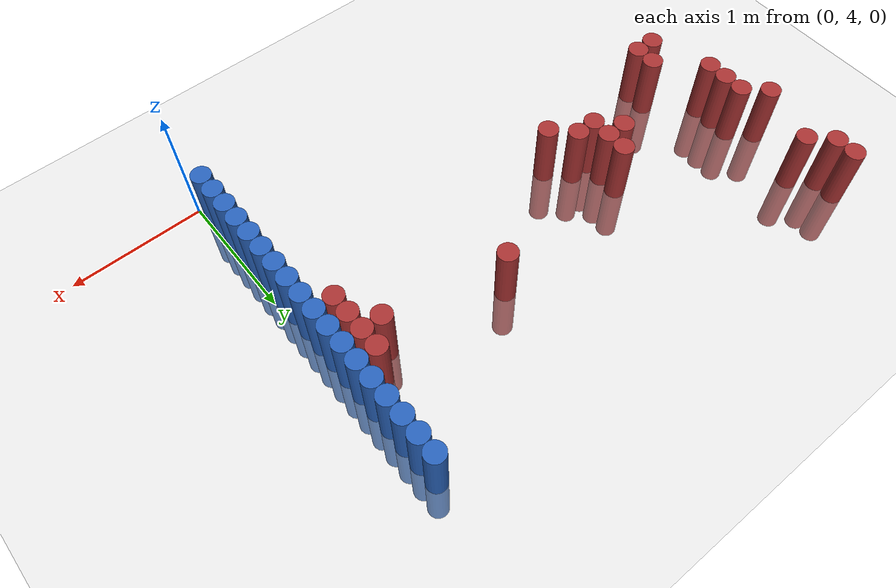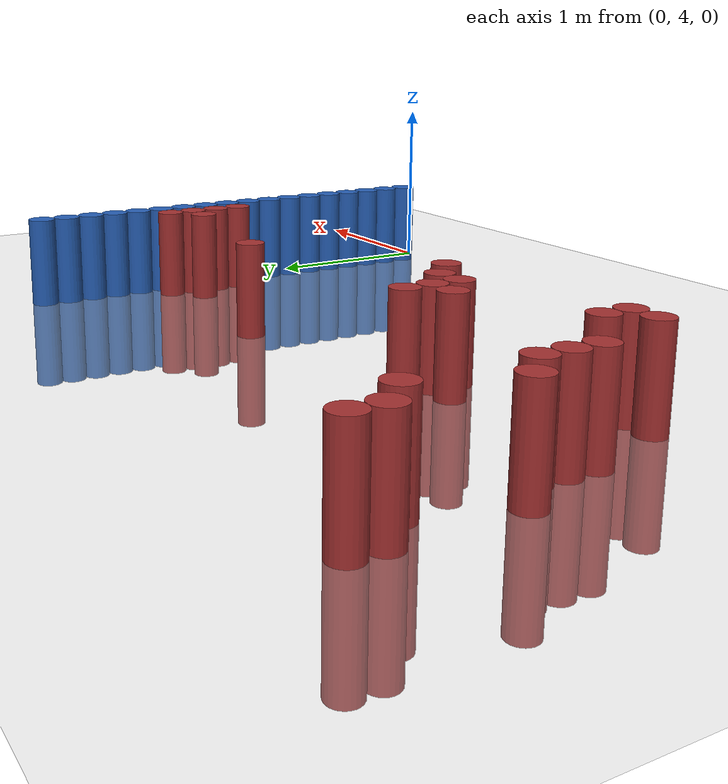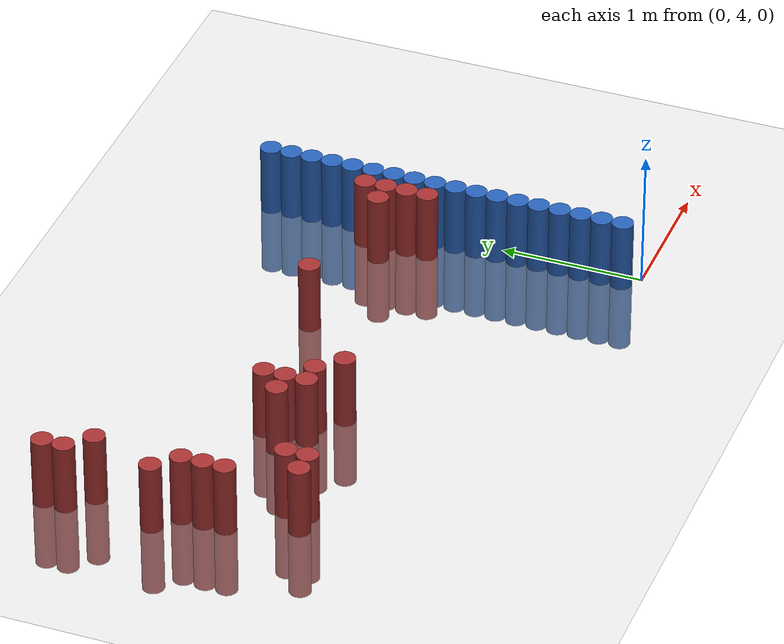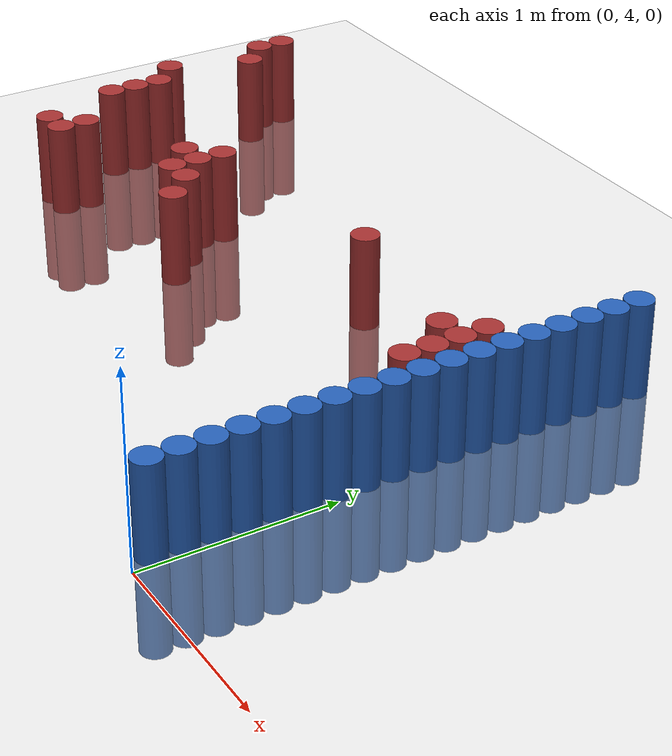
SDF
<sdf version="1.6">
 <world name="default">
  <model name="ground_plane">
   <static>1</static>
   <link name="link">
    <collision name="collision">
     <geometry><plane><normal>0 0 1</normal><size>100 100</size></plane></geometry>
     <surface><friction><ode><mu>100</mu><mu2>50</mu2></ode></friction></surface>
    </collision>
    <visual name="visual">
     <cast_shadows>0</cast_shadows>
     <geometry><plane><normal>0 0 1</normal><size>100 100</size></plane></geometry>
     <material>
      <script><uri>file://media/materials/scripts/gazebo.material</uri><name>Gazebo/Grey</name></script>
     </material>
    </visual>
   </link>
  </model>
  <model name="unit_cylinder_82">
   <static>1</static>
   <pose>-0.075000 4.125000 0.000000 0.000000 0.000000 0.000000</pose>
   <link name="link">
    <inertial>
     <mass>1</mass>
     <inertia><ixx>0.145833</ixx><ixy>0</ixy><ixz>0</ixz><iyy>0.145833</iyy><iyz>0</iyz><izz>0.125</izz></inertia>
    </inertial>
    <collision name="collision">
     <geometry><cylinder><radius>0.075000</radius><length>1</length></cylinder></geometry>
    </collision>
    <visual name="visual">
     <geometry><cylinder><radius>0.075000</radius><length>1</length></cylinder></geometry>
     <material>
      <ambient>0.152000 0.379000 0.720000 1</ambient>
      <diffuse>0.152000 0.379000 0.720000 1</diffuse>
     </material>
     <material>
      <script><name>Gazebo/Grey</name><uri>file://media/materials/scripts/gazebo.material</uri></script>
     </material>
    </visual>
    <sensor name="sensor_contact" type="contact"><contact><collision>collision</collision></contact></sensor>
   </link>
   <plugin filename="gz-sim-touchplugin-system" name="gz::sim::systems::TouchPlugin">
    <target>robot</target>
    <namespace>robot</namespace>
    <time>0.001</time>
    <enabled>true</enabled>
   </plugin>
  </model>
  <model name="unit_cylinder_84">
   <static>1</static>
   <pose>-0.075000 4.275000 0.000000 0.000000 0.000000 0.000000</pose>
   <link name="link">
    <inertial>
     <mass>1</mass>
     <inertia><ixx>0.145833</ixx><ixy>0</ixy><ixz>0</ixz><iyy>0.145833</iyy><iyz>0</iyz><izz>0.125</izz></inertia>
    </inertial>
    <collision name="collision">
     <geometry><cylinder><radius>0.075000</radius><length>1</length></cylinder></geometry>
    </collision>
    <visual name="visual">
     <geometry><cylinder><radius>0.075000</radius><length>1</length></cylinder></geometry>
     <material>
      <ambient>0.152000 0.379000 0.720000 1</ambient>
      <diffuse>0.152000 0.379000 0.720000 1</diffuse>
     </material>
     <material>
      <script><name>Gazebo/Grey</name><uri>file://media/materials/scripts/gazebo.material</uri></script>
     </material>
    </visual>
    <sensor name="sensor_contact" type="contact"><contact><collision>collision</collision></contact></sensor>
   </link>
   <plugin filename="gz-sim-touchplugin-system" name="gz::sim::systems::TouchPlugin">
    <target>robot</target>
    <namespace>robot</namespace>
    <time>0.001</time>
    <enabled>true</enabled>
   </plugin>
  </model>
  <model name="unit_cylinder_86">
   <static>1</static>
   <pose>-0.075000 4.425000 0.000000 0.000000 0.000000 0.000000</pose>
   <link name="link">
    <inertial>
     <mass>1</mass>
     <inertia><ixx>0.145833</ixx><ixy>0</ixy><ixz>0</ixz><iyy>0.145833</iyy><iyz>0</iyz><izz>0.125</izz></inertia>
    </inertial>
    <collision name="collision">
     <geometry><cylinder><radius>0.075000</radius><length>1</length></cylinder></geometry>
    </collision>
    <visual name="visual">
     <geometry><cylinder><radius>0.075000</radius><length>1</length></cylinder></geometry>
     <material>
      <ambient>0.152000 0.379000 0.720000 1</ambient>
      <diffuse>0.152000 0.379000 0.720000 1</diffuse>
     </material>
     <material>
      <script><name>Gazebo/Grey</name><uri>file://media/materials/scripts/gazebo.material</uri></script>
     </material>
    </visual>
    <sensor name="sensor_contact" type="contact"><contact><collision>collision</collision></contact></sensor>
   </link>
   <plugin filename="gz-sim-touchplugin-system" name="gz::sim::systems::TouchPlugin">
    <target>robot</target>
    <namespace>robot</namespace>
    <time>0.001</time>
    <enabled>true</enabled>
   </plugin>
  </model>
  <model name="unit_cylinder_88">
   <static>1</static>
   <pose>-0.075000 4.575000 0.000000 0.000000 0.000000 0.000000</pose>
   <link name="link">
    <inertial>
     <mass>1</mass>
     <inertia><ixx>0.145833</ixx><ixy>0</ixy><ixz>0</ixz><iyy>0.145833</iyy><iyz>0</iyz><izz>0.125</izz></inertia>
    </inertial>
    <collision name="collision">
     <geometry><cylinder><radius>0.075000</radius><length>1</length></cylinder></geometry>
    </collision>
    <visual name="visual">
     <geometry><cylinder><radius>0.075000</radius><length>1</length></cylinder></geometry>
     <material>
      <ambient>0.152000 0.379000 0.720000 1</ambient>
      <diffuse>0.152000 0.379000 0.720000 1</diffuse>
     </material>
     <material>
      <script><name>Gazebo/Grey</name><uri>file://media/materials/scripts/gazebo.material</uri></script>
     </material>
    </visual>
    <sensor name="sensor_contact" type="contact"><contact><collision>collision</collision></contact></sensor>
   </link>
   <plugin filename="gz-sim-touchplugin-system" name="gz::sim::systems::TouchPlugin">
    <target>robot</target>
    <namespace>robot</namespace>
    <time>0.001</time>
    <enabled>true</enabled>
   </plugin>
  </model>
  <model name="unit_cylinder_90">
   <static>1</static>
   <pose>-0.075000 4.725000 0.000000 0.000000 0.000000 0.000000</pose>
   <link name="link">
    <inertial>
     <mass>1</mass>
     <inertia><ixx>0.145833</ixx><ixy>0</ixy><ixz>0</ixz><iyy>0.145833</iyy><iyz>0</iyz><izz>0.125</izz></inertia>
    </inertial>
    <collision name="collision">
     <geometry><cylinder><radius>0.075000</radius><length>1</length></cylinder></geometry>
    </collision>
    <visual name="visual">
     <geometry><cylinder><radius>0.075000</radius><length>1</length></cylinder></geometry>
     <material>
      <ambient>0.152000 0.379000 0.720000 1</ambient>
      <diffuse>0.152000 0.379000 0.720000 1</diffuse>
     </material>
     <material>
      <script><name>Gazebo/Grey</name><uri>file://media/materials/scripts/gazebo.material</uri></script>
     </material>
    </visual>
    <sensor name="sensor_contact" type="contact"><contact><collision>collision</collision></contact></sensor>
   </link>
   <plugin filename="gz-sim-touchplugin-system" name="gz::sim::systems::TouchPlugin">
    <target>robot</target>
    <namespace>robot</namespace>
    <time>0.001</time>
    <enabled>true</enabled>
   </plugin>
  </model>
  <model name="unit_cylinder_92">
   <static>1</static>
   <pose>-0.075000 4.875000 0.000000 0.000000 0.000000 0.000000</pose>
   <link name="link">
    <inertial>
     <mass>1</mass>
     <inertia><ixx>0.145833</ixx><ixy>0</ixy><ixz>0</ixz><iyy>0.145833</iyy><iyz>0</iyz><izz>0.125</izz></inertia>
    </inertial>
    <collision name="collision">
     <geometry><cylinder><radius>0.075000</radius><length>1</length></cylinder></geometry>
    </collision>
    <visual name="visual">
     <geometry><cylinder><radius>0.075000</radius><length>1</length></cylinder></geometry>
     <material>
      <ambient>0.152000 0.379000 0.720000 1</ambient>
      <diffuse>0.152000 0.379000 0.720000 1</diffuse>
     </material>
     <material>
      <script><name>Gazebo/Grey</name><uri>file://media/materials/scripts/gazebo.material</uri></script>
     </material>
    </visual>
    <sensor name="sensor_contact" type="contact"><contact><collision>collision</collision></contact></sensor>
   </link>
   <plugin filename="gz-sim-touchplugin-system" name="gz::sim::systems::TouchPlugin">
    <target>robot</target>
    <namespace>robot</namespace>
    <time>0.001</time>
    <enabled>true</enabled>
   </plugin>
  </model>
  <model name="unit_cylinder_94">
   <static>1</static>
   <pose>-0.075000 5.025000 0.000000 0.000000 0.000000 0.000000</pose>
   <link name="link">
    <inertial>
     <mass>1</mass>
     <inertia><ixx>0.145833</ixx><ixy>0</ixy><ixz>0</ixz><iyy>0.145833</iyy><iyz>0</iyz><izz>0.125</izz></inertia>
    </inertial>
    <collision name="collision">
     <geometry><cylinder><radius>0.075000</radius><length>1</length></cylinder></geometry>
    </collision>
    <visual name="visual">
     <geometry><cylinder><radius>0.075000</radius><length>1</length></cylinder></geometry>
     <material>
      <ambient>0.152000 0.379000 0.720000 1</ambient>
      <diffuse>0.152000 0.379000 0.720000 1</diffuse>
     </material>
     <material>
      <script><name>Gazebo/Grey</name><uri>file://media/materials/scripts/gazebo.material</uri></script>
     </material>
    </visual>
    <sensor name="sensor_contact" type="contact"><contact><collision>collision</collision></contact></sensor>
   </link>
   <plugin filename="gz-sim-touchplugin-system" name="gz::sim::systems::TouchPlugin">
    <target>robot</target>
    <namespace>robot</namespace>
    <time>0.001</time>
    <enabled>true</enabled>
   </plugin>
  </model>
  <model name="unit_cylinder_178">
   <static>1</static>
   <pose>-3.675000 6.075000 0.000000 0.000000 0.000000 0.000000</pose>
   <link name="link">
    <inertial>
     <mass>1</mass>
     <inertia><ixx>0.145833</ixx><ixy>0</ixy><ixz>0</ixz><iyy>0.145833</iyy><iyz>0</iyz><izz>0.125</izz></inertia>
    </inertial>
    <collision name="collision">
     <geometry><cylinder><radius>0.075000</radius><length>1</length></cylinder></geometry>
    </collision>
    <visual name="visual">
     <geometry><cylinder><radius>0.075000</radius><length>1</length></cylinder></geometry>
     <material>
      <ambient>0.648000 0.192000 0.192000 1</ambient>
      <diffuse>0.648000 0.192000 0.192000 1</diffuse>
     </material>
     <material>
      <script><name>Gazebo/Grey</name><uri>file://media/materials/scripts/gazebo.material</uri></script>
     </material>
    </visual>
    <sensor name="sensor_contact" type="contact"><contact><collision>collision</collision></contact></sensor>
   </link>
   <plugin filename="gz-sim-touchplugin-system" name="gz::sim::systems::TouchPlugin">
    <target>robot</target>
    <namespace>robot</namespace>
    <time>0.001</time>
    <enabled>true</enabled>
   </plugin>
  </model>
  <model name="unit_cylinder_179">
   <static>1</static>
   <pose>-3.675000 6.675000 0.000000 0.000000 0.000000 0.000000</pose>
   <link name="link">
    <inertial>
     <mass>1</mass>
     <inertia><ixx>0.145833</ixx><ixy>0</ixy><ixz>0</ixz><iyy>0.145833</iyy><iyz>0</iyz><izz>0.125</izz></inertia>
    </inertial>
    <collision name="collision">
     <geometry><cylinder><radius>0.075000</radius><length>1</length></cylinder></geometry>
    </collision>
    <visual name="visual">
     <geometry><cylinder><radius>0.075000</radius><length>1</length></cylinder></geometry>
     <material>
      <ambient>0.648000 0.192000 0.192000 1</ambient>
      <diffuse>0.648000 0.192000 0.192000 1</diffuse>
     </material>
     <material>
      <script><name>Gazebo/Grey</name><uri>file://media/materials/scripts/gazebo.material</uri></script>
     </material>
    </visual>
    <sensor name="sensor_contact" type="contact"><contact><collision>collision</collision></contact></sensor>
   </link>
   <plugin filename="gz-sim-touchplugin-system" name="gz::sim::systems::TouchPlugin">
    <target>robot</target>
    <namespace>robot</namespace>
    <time>0.001</time>
    <enabled>true</enabled>
   </plugin>
  </model>
  <model name="unit_cylinder_180">
   <static>1</static>
   <pose>-3.675000 6.825000 0.000000 0.000000 0.000000 0.000000</pose>
   <link name="link">
    <inertial>
     <mass>1</mass>
     <inertia><ixx>0.145833</ixx><ixy>0</ixy><ixz>0</ixz><iyy>0.145833</iyy><iyz>0</iyz><izz>0.125</izz></inertia>
    </inertial>
    <collision name="collision">
     <geometry><cylinder><radius>0.075000</radius><length>1</length></cylinder></geometry>
    </collision>
    <visual name="visual">
     <geometry><cylinder><radius>0.075000</radius><length>1</length></cylinder></geometry>
     <material>
      <ambient>0.648000 0.192000 0.192000 1</ambient>
      <diffuse>0.648000 0.192000 0.192000 1</diffuse>
     </material>
     <material>
      <script><name>Gazebo/Grey</name><uri>file://media/materials/scripts/gazebo.material</uri></script>
     </material>
    </visual>
    <sensor name="sensor_contact" type="contact"><contact><collision>collision</collision></contact></sensor>
   </link>
   <plugin filename="gz-sim-touchplugin-system" name="gz::sim::systems::TouchPlugin">
    <target>robot</target>
    <namespace>robot</namespace>
    <time>0.001</time>
    <enabled>true</enabled>
   </plugin>
  </model>
  <model name="unit_cylinder_189">
   <static>1</static>
   <pose>-3.525000 5.625000 0.000000 0.000000 0.000000 0.000000</pose>
   <link name="link">
    <inertial>
     <mass>1</mass>
     <inertia><ixx>0.145833</ixx><ixy>0</ixy><ixz>0</ixz><iyy>0.145833</iyy><iyz>0</iyz><izz>0.125</izz></inertia>
    </inertial>
    <collision name="collision">
     <geometry><cylinder><radius>0.075000</radius><length>1</length></cylinder></geometry>
    </collision>
    <visual name="visual">
     <geometry><cylinder><radius>0.075000</radius><length>1</length></cylinder></geometry>
     <material>
      <ambient>0.648000 0.192000 0.192000 1</ambient>
      <diffuse>0.648000 0.192000 0.192000 1</diffuse>
     </material>
     <material>
      <script><name>Gazebo/Grey</name><uri>file://media/materials/scripts/gazebo.material</uri></script>
     </material>
    </visual>
    <sensor name="sensor_contact" type="contact"><contact><collision>collision</collision></contact></sensor>
   </link>
   <plugin filename="gz-sim-touchplugin-system" name="gz::sim::systems::TouchPlugin">
    <target>robot</target>
    <namespace>robot</namespace>
    <time>0.001</time>
    <enabled>true</enabled>
   </plugin>
  </model>
  <model name="unit_cylinder_190">
   <static>1</static>
   <pose>-3.525000 5.775000 0.000000 0.000000 0.000000 0.000000</pose>
   <link name="link">
    <inertial>
     <mass>1</mass>
     <inertia><ixx>0.145833</ixx><ixy>0</ixy><ixz>0</ixz><iyy>0.145833</iyy><iyz>0</iyz><izz>0.125</izz></inertia>
    </inertial>
    <collision name="collision">
     <geometry><cylinder><radius>0.075000</radius><length>1</length></cylinder></geometry>
    </collision>
    <visual name="visual">
     <geometry><cylinder><radius>0.075000</radius><length>1</length></cylinder></geometry>
     <material>
      <ambient>0.648000 0.192000 0.192000 1</ambient>
      <diffuse>0.648000 0.192000 0.192000 1</diffuse>
     </material>
     <material>
      <script><name>Gazebo/Grey</name><uri>file://media/materials/scripts/gazebo.material</uri></script>
     </material>
    </visual>
    <sensor name="sensor_contact" type="contact"><contact><collision>collision</collision></contact></sensor>
   </link>
   <plugin filename="gz-sim-touchplugin-system" name="gz::sim::systems::TouchPlugin">
    <target>robot</target>
    <namespace>robot</namespace>
    <time>0.001</time>
    <enabled>true</enabled>
   </plugin>
  </model>
  <model name="unit_cylinder_191">
   <static>1</static>
   <pose>-3.525000 5.925000 0.000000 0.000000 0.000000 0.000000</pose>
   <link name="link">
    <inertial>
     <mass>1</mass>
     <inertia><ixx>0.145833</ixx><ixy>0</ixy><ixz>0</ixz><iyy>0.145833</iyy><iyz>0</iyz><izz>0.125</izz></inertia>
    </inertial>
    <collision name="collision">
     <geometry><cylinder><radius>0.075000</radius><length>1</length></cylinder></geometry>
    </collision>
    <visual name="visual">
     <geometry><cylinder><radius>0.075000</radius><length>1</length></cylinder></geometry>
     <material>
      <ambient>0.648000 0.192000 0.192000 1</ambient>
      <diffuse>0.648000 0.192000 0.192000 1</diffuse>
     </material>
     <material>
      <script><name>Gazebo/Grey</name><uri>file://media/materials/scripts/gazebo.material</uri></script>
     </material>
    </visual>
    <sensor name="sensor_contact" type="contact"><contact><collision>collision</collision></contact></sensor>
   </link>
   <plugin filename="gz-sim-touchplugin-system" name="gz::sim::systems::TouchPlugin">
    <target>robot</target>
    <namespace>robot</namespace>
    <time>0.001</time>
    <enabled>true</enabled>
   </plugin>
  </model>
  <model name="unit_cylinder_192">
   <static>1</static>
   <pose>-3.525000 6.525000 0.000000 0.000000 0.000000 0.000000</pose>
   <link name="link">
    <inertial>
     <mass>1</mass>
     <inertia><ixx>0.145833</ixx><ixy>0</ixy><ixz>0</ixz><iyy>0.145833</iyy><iyz>0</iyz><izz>0.125</izz></inertia>
    </inertial>
    <collision name="collision">
     <geometry><cylinder><radius>0.075000</radius><length>1</length></cylinder></geometry>
    </collision>
    <visual name="visual">
     <geometry><cylinder><radius>0.075000</radius><length>1</length></cylinder></geometry>
     <material>
      <ambient>0.648000 0.192000 0.192000 1</ambient>
      <diffuse>0.648000 0.192000 0.192000 1</diffuse>
     </material>
     <material>
      <script><name>Gazebo/Grey</name><uri>file://media/materials/scripts/gazebo.material</uri></script>
     </material>
    </visual>
    <sensor name="sensor_contact" type="contact"><contact><collision>collision</collision></contact></sensor>
   </link>
   <plugin filename="gz-sim-touchplugin-system" name="gz::sim::systems::TouchPlugin">
    <target>robot</target>
    <namespace>robot</namespace>
    <time>0.001</time>
    <enabled>true</enabled>
   </plugin>
  </model>
  <model name="unit_cylinder_202">
   <static>1</static>
   <pose>-3.375000 5.175000 0.000000 0.000000 0.000000 0.000000</pose>
   <link name="link">
    <inertial>
     <mass>1</mass>
     <inertia><ixx>0.145833</ixx><ixy>0</ixy><ixz>0</ixz><iyy>0.145833</iyy><iyz>0</iyz><izz>0.125</izz></inertia>
    </inertial>
    <collision name="collision">
     <geometry><cylinder><radius>0.075000</radius><length>1</length></cylinder></geometry>
    </collision>
    <visual name="visual">
     <geometry><cylinder><radius>0.075000</radius><length>1</length></cylinder></geometry>
     <material>
      <ambient>0.648000 0.192000 0.192000 1</ambient>
      <diffuse>0.648000 0.192000 0.192000 1</diffuse>
     </material>
     <material>
      <script><name>Gazebo/Grey</name><uri>file://media/materials/scripts/gazebo.material</uri></script>
     </material>
    </visual>
    <sensor name="sensor_contact" type="contact"><contact><collision>collision</collision></contact></sensor>
   </link>
   <plugin filename="gz-sim-touchplugin-system" name="gz::sim::systems::TouchPlugin">
    <target>robot</target>
    <namespace>robot</namespace>
    <time>0.001</time>
    <enabled>true</enabled>
   </plugin>
  </model>
  <model name="unit_cylinder_212">
   <static>1</static>
   <pose>-3.225000 5.175000 0.000000 0.000000 0.000000 0.000000</pose>
   <link name="link">
    <inertial>
     <mass>1</mass>
     <inertia><ixx>0.145833</ixx><ixy>0</ixy><ixz>0</ixz><iyy>0.145833</iyy><iyz>0</iyz><izz>0.125</izz></inertia>
    </inertial>
    <collision name="collision">
     <geometry><cylinder><radius>0.075000</radius><length>1</length></cylinder></geometry>
    </collision>
    <visual name="visual">
     <geometry><cylinder><radius>0.075000</radius><length>1</length></cylinder></geometry>
     <material>
      <ambient>0.648000 0.192000 0.192000 1</ambient>
      <diffuse>0.648000 0.192000 0.192000 1</diffuse>
     </material>
     <material>
      <script><name>Gazebo/Grey</name><uri>file://media/materials/scripts/gazebo.material</uri></script>
     </material>
    </visual>
    <sensor name="sensor_contact" type="contact"><contact><collision>collision</collision></contact></sensor>
   </link>
   <plugin filename="gz-sim-touchplugin-system" name="gz::sim::systems::TouchPlugin">
    <target>robot</target>
    <namespace>robot</namespace>
    <time>0.001</time>
    <enabled>true</enabled>
   </plugin>
  </model>
  <model name="unit_cylinder_213">
   <static>1</static>
   <pose>-3.225000 5.325000 0.000000 0.000000 0.000000 0.000000</pose>
   <link name="link">
    <inertial>
     <mass>1</mass>
     <inertia><ixx>0.145833</ixx><ixy>0</ixy><ixz>0</ixz><iyy>0.145833</iyy><iyz>0</iyz><izz>0.125</izz></inertia>
    </inertial>
    <collision name="collision">
     <geometry><cylinder><radius>0.075000</radius><length>1</length></cylinder></geometry>
    </collision>
    <visual name="visual">
     <geometry><cylinder><radius>0.075000</radius><length>1</length></cylinder></geometry>
     <material>
      <ambient>0.648000 0.192000 0.192000 1</ambient>
      <diffuse>0.648000 0.192000 0.192000 1</diffuse>
     </material>
     <material>
      <script><name>Gazebo/Grey</name><uri>file://media/materials/scripts/gazebo.material</uri></script>
     </material>
    </visual>
    <sensor name="sensor_contact" type="contact"><contact><collision>collision</collision></contact></sensor>
   </link>
   <plugin filename="gz-sim-touchplugin-system" name="gz::sim::systems::TouchPlugin">
    <target>robot</target>
    <namespace>robot</namespace>
    <time>0.001</time>
    <enabled>true</enabled>
   </plugin>
  </model>
  <model name="unit_cylinder_214">
   <static>1</static>
   <pose>-2.625000 5.625000 0.000000 0.000000 0.000000 0.000000</pose>
   <link name="link">
    <inertial>
     <mass>1</mass>
     <inertia><ixx>0.145833</ixx><ixy>0</ixy><ixz>0</ixz><iyy>0.145833</iyy><iyz>0</iyz><izz>0.125</izz></inertia>
    </inertial>
    <collision name="collision">
     <geometry><cylinder><radius>0.075000</radius><length>1</length></cylinder></geometry>
    </collision>
    <visual name="visual">
     <geometry><cylinder><radius>0.075000</radius><length>1</length></cylinder></geometry>
     <material>
      <ambient>0.648000 0.192000 0.192000 1</ambient>
      <diffuse>0.648000 0.192000 0.192000 1</diffuse>
     </material>
     <material>
      <script><name>Gazebo/Grey</name><uri>file://media/materials/scripts/gazebo.material</uri></script>
     </material>
    </visual>
    <sensor name="sensor_contact" type="contact"><contact><collision>collision</collision></contact></sensor>
   </link>
   <plugin filename="gz-sim-touchplugin-system" name="gz::sim::systems::TouchPlugin">
    <target>robot</target>
    <namespace>robot</namespace>
    <time>0.001</time>
    <enabled>true</enabled>
   </plugin>
  </model>
  <model name="unit_cylinder_215">
   <static>1</static>
   <pose>-2.475000 5.475000 0.000000 0.000000 0.000000 0.000000</pose>
   <link name="link">
    <inertial>
     <mass>1</mass>
     <inertia><ixx>0.145833</ixx><ixy>0</ixy><ixz>0</ixz><iyy>0.145833</iyy><iyz>0</iyz><izz>0.125</izz></inertia>
    </inertial>
    <collision name="collision">
     <geometry><cylinder><radius>0.075000</radius><length>1</length></cylinder></geometry>
    </collision>
    <visual name="visual">
     <geometry><cylinder><radius>0.075000</radius><length>1</length></cylinder></geometry>
     <material>
      <ambient>0.648000 0.192000 0.192000 1</ambient>
      <diffuse>0.648000 0.192000 0.192000 1</diffuse>
     </material>
     <material>
      <script><name>Gazebo/Grey</name><uri>file://media/materials/scripts/gazebo.material</uri></script>
     </material>
    </visual>
    <sensor name="sensor_contact" type="contact"><contact><collision>collision</collision></contact></sensor>
   </link>
   <plugin filename="gz-sim-touchplugin-system" name="gz::sim::systems::TouchPlugin">
    <target>robot</target>
    <namespace>robot</namespace>
    <time>0.001</time>
    <enabled>true</enabled>
   </plugin>
  </model>
  <model name="unit_cylinder_216">
   <static>1</static>
   <pose>-2.475000 5.625000 0.000000 0.000000 0.000000 0.000000</pose>
   <link name="link">
    <inertial>
     <mass>1</mass>
     <inertia><ixx>0.145833</ixx><ixy>0</ixy><ixz>0</ixz><iyy>0.145833</iyy><iyz>0</iyz><izz>0.125</izz></inertia>
    </inertial>
    <collision name="collision">
     <geometry><cylinder><radius>0.075000</radius><length>1</length></cylinder></geometry>
    </collision>
    <visual name="visual">
     <geometry><cylinder><radius>0.075000</radius><length>1</length></cylinder></geometry>
     <material>
      <ambient>0.648000 0.192000 0.192000 1</ambient>
      <diffuse>0.648000 0.192000 0.192000 1</diffuse>
     </material>
     <material>
      <script><name>Gazebo/Grey</name><uri>file://media/materials/scripts/gazebo.material</uri></script>
     </material>
    </visual>
    <sensor name="sensor_contact" type="contact"><contact><collision>collision</collision></contact></sensor>
   </link>
   <plugin filename="gz-sim-touchplugin-system" name="gz::sim::systems::TouchPlugin">
    <target>robot</target>
    <namespace>robot</namespace>
    <time>0.001</time>
    <enabled>true</enabled>
   </plugin>
  </model>
  <model name="unit_cylinder_217">
   <static>1</static>
   <pose>-2.475000 5.775000 0.000000 0.000000 0.000000 0.000000</pose>
   <link name="link">
    <inertial>
     <mass>1</mass>
     <inertia><ixx>0.145833</ixx><ixy>0</ixy><ixz>0</ixz><iyy>0.145833</iyy><iyz>0</iyz><izz>0.125</izz></inertia>
    </inertial>
    <collision name="collision">
     <geometry><cylinder><radius>0.075000</radius><length>1</length></cylinder></geometry>
    </collision>
    <visual name="visual">
     <geometry><cylinder><radius>0.075000</radius><length>1</length></cylinder></geometry>
     <material>
      <ambient>0.648000 0.192000 0.192000 1</ambient>
      <diffuse>0.648000 0.192000 0.192000 1</diffuse>
     </material>
     <material>
      <script><name>Gazebo/Grey</name><uri>file://media/materials/scripts/gazebo.material</uri></script>
     </material>
    </visual>
    <sensor name="sensor_contact" type="contact"><contact><collision>collision</collision></contact></sensor>
   </link>
   <plugin filename="gz-sim-touchplugin-system" name="gz::sim::systems::TouchPlugin">
    <target>robot</target>
    <namespace>robot</namespace>
    <time>0.001</time>
    <enabled>true</enabled>
   </plugin>
  </model>
  <model name="unit_cylinder_222">
   <static>1</static>
   <pose>-2.325000 5.475000 0.000000 0.000000 0.000000 0.000000</pose>
   <link name="link">
    <inertial>
     <mass>1</mass>
     <inertia><ixx>0.145833</ixx><ixy>0</ixy><ixz>0</ixz><iyy>0.145833</iyy><iyz>0</iyz><izz>0.125</izz></inertia>
    </inertial>
    <collision name="collision">
     <geometry><cylinder><radius>0.075000</radius><length>1</length></cylinder></geometry>
    </collision>
    <visual name="visual">
     <geometry><cylinder><radius>0.075000</radius><length>1</length></cylinder></geometry>
     <material>
      <ambient>0.648000 0.192000 0.192000 1</ambient>
      <diffuse>0.648000 0.192000 0.192000 1</diffuse>
     </material>
     <material>
      <script><name>Gazebo/Grey</name><uri>file://media/materials/scripts/gazebo.material</uri></script>
     </material>
    </visual>
    <sensor name="sensor_contact" type="contact"><contact><collision>collision</collision></contact></sensor>
   </link>
   <plugin filename="gz-sim-touchplugin-system" name="gz::sim::systems::TouchPlugin">
    <target>robot</target>
    <namespace>robot</namespace>
    <time>0.001</time>
    <enabled>true</enabled>
   </plugin>
  </model>
  <model name="unit_cylinder_227">
   <static>1</static>
   <pose>-2.175000 5.325000 0.000000 0.000000 0.000000 0.000000</pose>
   <link name="link">
    <inertial>
     <mass>1</mass>
     <inertia><ixx>0.145833</ixx><ixy>0</ixy><ixz>0</ixz><iyy>0.145833</iyy><iyz>0</iyz><izz>0.125</izz></inertia>
    </inertial>
    <collision name="collision">
     <geometry><cylinder><radius>0.075000</radius><length>1</length></cylinder></geometry>
    </collision>
    <visual name="visual">
     <geometry><cylinder><radius>0.075000</radius><length>1</length></cylinder></geometry>
     <material>
      <ambient>0.648000 0.192000 0.192000 1</ambient>
      <diffuse>0.648000 0.192000 0.192000 1</diffuse>
     </material>
     <material>
      <script><name>Gazebo/Grey</name><uri>file://media/materials/scripts/gazebo.material</uri></script>
     </material>
    </visual>
    <sensor name="sensor_contact" type="contact"><contact><collision>collision</collision></contact></sensor>
   </link>
   <plugin filename="gz-sim-touchplugin-system" name="gz::sim::systems::TouchPlugin">
    <target>robot</target>
    <namespace>robot</namespace>
    <time>0.001</time>
    <enabled>true</enabled>
   </plugin>
  </model>
  <model name="unit_cylinder_245">
   <static>1</static>
   <pose>-1.275000 5.925000 0.000000 0.000000 0.000000 0.000000</pose>
   <link name="link">
    <inertial>
     <mass>1</mass>
     <inertia><ixx>0.145833</ixx><ixy>0</ixy><ixz>0</ixz><iyy>0.145833</iyy><iyz>0</iyz><izz>0.125</izz></inertia>
    </inertial>
    <collision name="collision">
     <geometry><cylinder><radius>0.075000</radius><length>1</length></cylinder></geometry>
    </collision>
    <visual name="visual">
     <geometry><cylinder><radius>0.075000</radius><length>1</length></cylinder></geometry>
     <material>
      <ambient>0.648000 0.192000 0.192000 1</ambient>
      <diffuse>0.648000 0.192000 0.192000 1</diffuse>
     </material>
     <material>
      <script><name>Gazebo/Grey</name><uri>file://media/materials/scripts/gazebo.material</uri></script>
     </material>
    </visual>
    <sensor name="sensor_contact" type="contact"><contact><collision>collision</collision></contact></sensor>
   </link>
   <plugin filename="gz-sim-touchplugin-system" name="gz::sim::systems::TouchPlugin">
    <target>robot</target>
    <namespace>robot</namespace>
    <time>0.001</time>
    <enabled>true</enabled>
   </plugin>
  </model>
  <model name="unit_cylinder_274">
   <static>1</static>
   <pose>-0.375000 5.775000 0.000000 0.000000 0.000000 0.000000</pose>
   <link name="link">
    <inertial>
     <mass>1</mass>
     <inertia><ixx>0.145833</ixx><ixy>0</ixy><ixz>0</ixz><iyy>0.145833</iyy><iyz>0</iyz><izz>0.125</izz></inertia>
    </inertial>
    <collision name="collision">
     <geometry><cylinder><radius>0.075000</radius><length>1</length></cylinder></geometry>
    </collision>
    <visual name="visual">
     <geometry><cylinder><radius>0.075000</radius><length>1</length></cylinder></geometry>
     <material>
      <ambient>0.648000 0.192000 0.192000 1</ambient>
      <diffuse>0.648000 0.192000 0.192000 1</diffuse>
     </material>
     <material>
      <script><name>Gazebo/Grey</name><uri>file://media/materials/scripts/gazebo.material</uri></script>
     </material>
    </visual>
    <sensor name="sensor_contact" type="contact"><contact><collision>collision</collision></contact></sensor>
   </link>
   <plugin filename="gz-sim-touchplugin-system" name="gz::sim::systems::TouchPlugin">
    <target>robot</target>
    <namespace>robot</namespace>
    <time>0.001</time>
    <enabled>true</enabled>
   </plugin>
  </model>
  <model name="unit_cylinder_277">
   <static>1</static>
   <pose>-0.225000 5.475000 0.000000 0.000000 0.000000 0.000000</pose>
   <link name="link">
    <inertial>
     <mass>1</mass>
     <inertia><ixx>0.145833</ixx><ixy>0</ixy><ixz>0</ixz><iyy>0.145833</iyy><iyz>0</iyz><izz>0.125</izz></inertia>
    </inertial>
    <collision name="collision">
     <geometry><cylinder><radius>0.075000</radius><length>1</length></cylinder></geometry>
    </collision>
    <visual name="visual">
     <geometry><cylinder><radius>0.075000</radius><length>1</length></cylinder></geometry>
     <material>
      <ambient>0.648000 0.192000 0.192000 1</ambient>
      <diffuse>0.648000 0.192000 0.192000 1</diffuse>
     </material>
     <material>
      <script><name>Gazebo/Grey</name><uri>file://media/materials/scripts/gazebo.material</uri></script>
     </material>
    </visual>
    <sensor name="sensor_contact" type="contact"><contact><collision>collision</collision></contact></sensor>
   </link>
   <plugin filename="gz-sim-touchplugin-system" name="gz::sim::systems::TouchPlugin">
    <target>robot</target>
    <namespace>robot</namespace>
    <time>0.001</time>
    <enabled>true</enabled>
   </plugin>
  </model>
  <model name="unit_cylinder_278">
   <static>1</static>
   <pose>-0.225000 5.625000 0.000000 0.000000 0.000000 0.000000</pose>
   <link name="link">
    <inertial>
     <mass>1</mass>
     <inertia><ixx>0.145833</ixx><ixy>0</ixy><ixz>0</ixz><iyy>0.145833</iyy><iyz>0</iyz><izz>0.125</izz></inertia>
    </inertial>
    <collision name="collision">
     <geometry><cylinder><radius>0.075000</radius><length>1</length></cylinder></geometry>
    </collision>
    <visual name="visual">
     <geometry><cylinder><radius>0.075000</radius><length>1</length></cylinder></geometry>
     <material>
      <ambient>0.648000 0.192000 0.192000 1</ambient>
      <diffuse>0.648000 0.192000 0.192000 1</diffuse>
     </material>
     <material>
      <script><name>Gazebo/Grey</name><uri>file://media/materials/scripts/gazebo.material</uri></script>
     </material>
    </visual>
    <sensor name="sensor_contact" type="contact"><contact><collision>collision</collision></contact></sensor>
   </link>
   <plugin filename="gz-sim-touchplugin-system" name="gz::sim::systems::TouchPlugin">
    <target>robot</target>
    <namespace>robot</namespace>
    <time>0.001</time>
    <enabled>true</enabled>
   </plugin>
  </model>
  <model name="unit_cylinder_279">
   <static>1</static>
   <pose>-0.225000 5.775000 0.000000 0.000000 0.000000 0.000000</pose>
   <link name="link">
    <inertial>
     <mass>1</mass>
     <inertia><ixx>0.145833</ixx><ixy>0</ixy><ixz>0</ixz><iyy>0.145833</iyy><iyz>0</iyz><izz>0.125</izz></inertia>
    </inertial>
    <collision name="collision">
     <geometry><cylinder><radius>0.075000</radius><length>1</length></cylinder></geometry>
    </collision>
    <visual name="visual">
     <geometry><cylinder><radius>0.075000</radius><length>1</length></cylinder></geometry>
     <material>
      <ambient>0.648000 0.192000 0.192000 1</ambient>
      <diffuse>0.648000 0.192000 0.192000 1</diffuse>
     </material>
     <material>
      <script><name>Gazebo/Grey</name><uri>file://media/materials/scripts/gazebo.material</uri></script>
     </material>
    </visual>
    <sensor name="sensor_contact" type="contact"><contact><collision>collision</collision></contact></sensor>
   </link>
   <plugin filename="gz-sim-touchplugin-system" name="gz::sim::systems::TouchPlugin">
    <target>robot</target>
    <namespace>robot</namespace>
    <time>0.001</time>
    <enabled>true</enabled>
   </plugin>
  </model>
  <model name="unit_cylinder_280">
   <static>1</static>
   <pose>-0.225000 5.925000 0.000000 0.000000 0.000000 0.000000</pose>
   <link name="link">
    <inertial>
     <mass>1</mass>
     <inertia><ixx>0.145833</ixx><ixy>0</ixy><ixz>0</ixz><iyy>0.145833</iyy><iyz>0</iyz><izz>0.125</izz></inertia>
    </inertial>
    <collision name="collision">
     <geometry><cylinder><radius>0.075000</radius><length>1</length></cylinder></geometry>
    </collision>
    <visual name="visual">
     <geometry><cylinder><radius>0.075000</radius><length>1</length></cylinder></geometry>
     <material>
      <ambient>0.648000 0.192000 0.192000 1</ambient>
      <diffuse>0.648000 0.192000 0.192000 1</diffuse>
     </material>
     <material>
      <script><name>Gazebo/Grey</name><uri>file://media/materials/scripts/gazebo.material</uri></script>
     </material>
    </visual>
    <sensor name="sensor_contact" type="contact"><contact><collision>collision</collision></contact></sensor>
   </link>
   <plugin filename="gz-sim-touchplugin-system" name="gz::sim::systems::TouchPlugin">
    <target>robot</target>
    <namespace>robot</namespace>
    <time>0.001</time>
    <enabled>true</enabled>
   </plugin>
  </model>
  <model name="unit_cylinder_291">
   <static>1</static>
   <pose>-0.075000 5.175000 0.000000 0.000000 0.000000 0.000000</pose>
   <link name="link">
    <inertial>
     <mass>1</mass>
     <inertia><ixx>0.145833</ixx><ixy>0</ixy><ixz>0</ixz><iyy>0.145833</iyy><iyz>0</iyz><izz>0.125</izz></inertia>
    </inertial>
    <collision name="collision">
     <geometry><cylinder><radius>0.075000</radius><length>1</length></cylinder></geometry>
    </collision>
    <visual name="visual">
     <geometry><cylinder><radius>0.075000</radius><length>1</length></cylinder></geometry>
     <material>
      <ambient>0.152000 0.379000 0.720000 1</ambient>
      <diffuse>0.152000 0.379000 0.720000 1</diffuse>
     </material>
     <material>
      <script><name>Gazebo/Grey</name><uri>file://media/materials/scripts/gazebo.material</uri></script>
     </material>
    </visual>
    <sensor name="sensor_contact" type="contact"><contact><collision>collision</collision></contact></sensor>
   </link>
   <plugin filename="gz-sim-touchplugin-system" name="gz::sim::systems::TouchPlugin">
    <target>robot</target>
    <namespace>robot</namespace>
    <time>0.001</time>
    <enabled>true</enabled>
   </plugin>
  </model>
  <model name="unit_cylinder_292">
   <static>1</static>
   <pose>-0.075000 5.325000 0.000000 0.000000 0.000000 0.000000</pose>
   <link name="link">
    <inertial>
     <mass>1</mass>
     <inertia><ixx>0.145833</ixx><ixy>0</ixy><ixz>0</ixz><iyy>0.145833</iyy><iyz>0</iyz><izz>0.125</izz></inertia>
    </inertial>
    <collision name="collision">
     <geometry><cylinder><radius>0.075000</radius><length>1</length></cylinder></geometry>
    </collision>
    <visual name="visual">
     <geometry><cylinder><radius>0.075000</radius><length>1</length></cylinder></geometry>
     <material>
      <ambient>0.152000 0.379000 0.720000 1</ambient>
      <diffuse>0.152000 0.379000 0.720000 1</diffuse>
     </material>
     <material>
      <script><name>Gazebo/Grey</name><uri>file://media/materials/scripts/gazebo.material</uri></script>
     </material>
    </visual>
    <sensor name="sensor_contact" type="contact"><contact><collision>collision</collision></contact></sensor>
   </link>
   <plugin filename="gz-sim-touchplugin-system" name="gz::sim::systems::TouchPlugin">
    <target>robot</target>
    <namespace>robot</namespace>
    <time>0.001</time>
    <enabled>true</enabled>
   </plugin>
  </model>
  <model name="unit_cylinder_293">
   <static>1</static>
   <pose>-0.075000 5.475000 0.000000 0.000000 0.000000 0.000000</pose>
   <link name="link">
    <inertial>
     <mass>1</mass>
     <inertia><ixx>0.145833</ixx><ixy>0</ixy><ixz>0</ixz><iyy>0.145833</iyy><iyz>0</iyz><izz>0.125</izz></inertia>
    </inertial>
    <collision name="collision">
     <geometry><cylinder><radius>0.075000</radius><length>1</length></cylinder></geometry>
    </collision>
    <visual name="visual">
     <geometry><cylinder><radius>0.075000</radius><length>1</length></cylinder></geometry>
     <material>
      <ambient>0.152000 0.379000 0.720000 1</ambient>
      <diffuse>0.152000 0.379000 0.720000 1</diffuse>
     </material>
     <material>
      <script><name>Gazebo/Grey</name><uri>file://media/materials/scripts/gazebo.material</uri></script>
     </material>
    </visual>
    <sensor name="sensor_contact" type="contact"><contact><collision>collision</collision></contact></sensor>
   </link>
   <plugin filename="gz-sim-touchplugin-system" name="gz::sim::systems::TouchPlugin">
    <target>robot</target>
    <namespace>robot</namespace>
    <time>0.001</time>
    <enabled>true</enabled>
   </plugin>
  </model>
  <model name="unit_cylinder_294">
   <static>1</static>
   <pose>-0.075000 5.625000 0.000000 0.000000 0.000000 0.000000</pose>
   <link name="link">
    <inertial>
     <mass>1</mass>
     <inertia><ixx>0.145833</ixx><ixy>0</ixy><ixz>0</ixz><iyy>0.145833</iyy><iyz>0</iyz><izz>0.125</izz></inertia>
    </inertial>
    <collision name="collision">
     <geometry><cylinder><radius>0.075000</radius><length>1</length></cylinder></geometry>
    </collision>
    <visual name="visual">
     <geometry><cylinder><radius>0.075000</radius><length>1</length></cylinder></geometry>
     <material>
      <ambient>0.152000 0.379000 0.720000 1</ambient>
      <diffuse>0.152000 0.379000 0.720000 1</diffuse>
     </material>
     <material>
      <script><name>Gazebo/Grey</name><uri>file://media/materials/scripts/gazebo.material</uri></script>
     </material>
    </visual>
    <sensor name="sensor_contact" type="contact"><contact><collision>collision</collision></contact></sensor>
   </link>
   <plugin filename="gz-sim-touchplugin-system" name="gz::sim::systems::TouchPlugin">
    <target>robot</target>
    <namespace>robot</namespace>
    <time>0.001</time>
    <enabled>true</enabled>
   </plugin>
  </model>
  <model name="unit_cylinder_295">
   <static>1</static>
   <pose>-0.075000 5.775000 0.000000 0.000000 0.000000 0.000000</pose>
   <link name="link">
    <inertial>
     <mass>1</mass>
     <inertia><ixx>0.145833</ixx><ixy>0</ixy><ixz>0</ixz><iyy>0.145833</iyy><iyz>0</iyz><izz>0.125</izz></inertia>
    </inertial>
    <collision name="collision">
     <geometry><cylinder><radius>0.075000</radius><length>1</length></cylinder></geometry>
    </collision>
    <visual name="visual">
     <geometry><cylinder><radius>0.075000</radius><length>1</length></cylinder></geometry>
     <material>
      <ambient>0.152000 0.379000 0.720000 1</ambient>
      <diffuse>0.152000 0.379000 0.720000 1</diffuse>
     </material>
     <material>
      <script><name>Gazebo/Grey</name><uri>file://media/materials/scripts/gazebo.material</uri></script>
     </material>
    </visual>
    <sensor name="sensor_contact" type="contact"><contact><collision>collision</collision></contact></sensor>
   </link>
   <plugin filename="gz-sim-touchplugin-system" name="gz::sim::systems::TouchPlugin">
    <target>robot</target>
    <namespace>robot</namespace>
    <time>0.001</time>
    <enabled>true</enabled>
   </plugin>
  </model>
  <model name="unit_cylinder_296">
   <static>1</static>
   <pose>-0.075000 5.925000 0.000000 0.000000 0.000000 0.000000</pose>
   <link name="link">
    <inertial>
     <mass>1</mass>
     <inertia><ixx>0.145833</ixx><ixy>0</ixy><ixz>0</ixz><iyy>0.145833</iyy><iyz>0</iyz><izz>0.125</izz></inertia>
    </inertial>
    <collision name="collision">
     <geometry><cylinder><radius>0.075000</radius><length>1</length></cylinder></geometry>
    </collision>
    <visual name="visual">
     <geometry><cylinder><radius>0.075000</radius><length>1</length></cylinder></geometry>
     <material>
      <ambient>0.152000 0.379000 0.720000 1</ambient>
      <diffuse>0.152000 0.379000 0.720000 1</diffuse>
     </material>
     <material>
      <script><name>Gazebo/Grey</name><uri>file://media/materials/scripts/gazebo.material</uri></script>
     </material>
    </visual>
    <sensor name="sensor_contact" type="contact"><contact><collision>collision</collision></contact></sensor>
   </link>
   <plugin filename="gz-sim-touchplugin-system" name="gz::sim::systems::TouchPlugin">
    <target>robot</target>
    <namespace>robot</namespace>
    <time>0.001</time>
    <enabled>true</enabled>
   </plugin>
  </model>
  <model name="unit_cylinder_297">
   <static>1</static>
   <pose>-0.075000 6.075000 0.000000 0.000000 0.000000 0.000000</pose>
   <link name="link">
    <inertial>
     <mass>1</mass>
     <inertia><ixx>0.145833</ixx><ixy>0</ixy><ixz>0</ixz><iyy>0.145833</iyy><iyz>0</iyz><izz>0.125</izz></inertia>
    </inertial>
    <collision name="collision">
     <geometry><cylinder><radius>0.075000</radius><length>1</length></cylinder></geometry>
    </collision>
    <visual name="visual">
     <geometry><cylinder><radius>0.075000</radius><length>1</length></cylinder></geometry>
     <material>
      <ambient>0.152000 0.379000 0.720000 1</ambient>
      <diffuse>0.152000 0.379000 0.720000 1</diffuse>
     </material>
     <material>
      <script><name>Gazebo/Grey</name><uri>file://media/materials/scripts/gazebo.material</uri></script>
     </material>
    </visual>
    <sensor name="sensor_contact" type="contact"><contact><collision>collision</collision></contact></sensor>
   </link>
   <plugin filename="gz-sim-touchplugin-system" name="gz::sim::systems::TouchPlugin">
    <target>robot</target>
    <namespace>robot</namespace>
    <time>0.001</time>
    <enabled>true</enabled>
   </plugin>
  </model>
  <model name="unit_cylinder_298">
   <static>1</static>
   <pose>-0.075000 6.225000 0.000000 0.000000 0.000000 0.000000</pose>
   <link name="link">
    <inertial>
     <mass>1</mass>
     <inertia><ixx>0.145833</ixx><ixy>0</ixy><ixz>0</ixz><iyy>0.145833</iyy><iyz>0</iyz><izz>0.125</izz></inertia>
    </inertial>
    <collision name="collision">
     <geometry><cylinder><radius>0.075000</radius><length>1</length></cylinder></geometry>
    </collision>
    <visual name="visual">
     <geometry><cylinder><radius>0.075000</radius><length>1</length></cylinder></geometry>
     <material>
      <ambient>0.152000 0.379000 0.720000 1</ambient>
      <diffuse>0.152000 0.379000 0.720000 1</diffuse>
     </material>
     <material>
      <script><name>Gazebo/Grey</name><uri>file://media/materials/scripts/gazebo.material</uri></script>
     </material>
    </visual>
    <sensor name="sensor_contact" type="contact"><contact><collision>collision</collision></contact></sensor>
   </link>
   <plugin filename="gz-sim-touchplugin-system" name="gz::sim::systems::TouchPlugin">
    <target>robot</target>
    <namespace>robot</namespace>
    <time>0.001</time>
    <enabled>true</enabled>
   </plugin>
  </model>
  <model name="unit_cylinder_299">
   <static>1</static>
   <pose>-0.075000 6.375000 0.000000 0.000000 0.000000 0.000000</pose>
   <link name="link">
    <inertial>
     <mass>1</mass>
     <inertia><ixx>0.145833</ixx><ixy>0</ixy><ixz>0</ixz><iyy>0.145833</iyy><iyz>0</iyz><izz>0.125</izz></inertia>
    </inertial>
    <collision name="collision">
     <geometry><cylinder><radius>0.075000</radius><length>1</length></cylinder></geometry>
    </collision>
    <visual name="visual">
     <geometry><cylinder><radius>0.075000</radius><length>1</length></cylinder></geometry>
     <material>
      <ambient>0.152000 0.379000 0.720000 1</ambient>
      <diffuse>0.152000 0.379000 0.720000 1</diffuse>
     </material>
     <material>
      <script><name>Gazebo/Grey</name><uri>file://media/materials/scripts/gazebo.material</uri></script>
     </material>
    </visual>
    <sensor name="sensor_contact" type="contact"><contact><collision>collision</collision></contact></sensor>
   </link>
   <plugin filename="gz-sim-touchplugin-system" name="gz::sim::systems::TouchPlugin">
    <target>robot</target>
    <namespace>robot</namespace>
    <time>0.001</time>
    <enabled>true</enabled>
   </plugin>
  </model>
  <model name="unit_cylinder_300">
   <static>1</static>
   <pose>-0.075000 6.525000 0.000000 0.000000 0.000000 0.000000</pose>
   <link name="link">
    <inertial>
     <mass>1</mass>
     <inertia><ixx>0.145833</ixx><ixy>0</ixy><ixz>0</ixz><iyy>0.145833</iyy><iyz>0</iyz><izz>0.125</izz></inertia>
    </inertial>
    <collision name="collision">
     <geometry><cylinder><radius>0.075000</radius><length>1</length></cylinder></geometry>
    </collision>
    <visual name="visual">
     <geometry><cylinder><radius>0.075000</radius><length>1</length></cylinder></geometry>
     <material>
      <ambient>0.152000 0.379000 0.720000 1</ambient>
      <diffuse>0.152000 0.379000 0.720000 1</diffuse>
     </material>
     <material>
      <script><name>Gazebo/Grey</name><uri>file://media/materials/scripts/gazebo.material</uri></script>
     </material>
    </visual>
    <sensor name="sensor_contact" type="contact"><contact><collision>collision</collision></contact></sensor>
   </link>
   <plugin filename="gz-sim-touchplugin-system" name="gz::sim::systems::TouchPlugin">
    <target>robot</target>
    <namespace>robot</namespace>
    <time>0.001</time>
    <enabled>true</enabled>
   </plugin>
  </model>
  <model name="unit_cylinder_301">
   <static>1</static>
   <pose>-0.075000 6.675000 0.000000 0.000000 0.000000 0.000000</pose>
   <link name="link">
    <inertial>
     <mass>1</mass>
     <inertia><ixx>0.145833</ixx><ixy>0</ixy><ixz>0</ixz><iyy>0.145833</iyy><iyz>0</iyz><izz>0.125</izz></inertia>
    </inertial>
    <collision name="collision">
     <geometry><cylinder><radius>0.075000</radius><length>1</length></cylinder></geometry>
    </collision>
    <visual name="visual">
     <geometry><cylinder><radius>0.075000</radius><length>1</length></cylinder></geometry>
     <material>
      <ambient>0.152000 0.379000 0.720000 1</ambient>
      <diffuse>0.152000 0.379000 0.720000 1</diffuse>
     </material>
     <material>
      <script><name>Gazebo/Grey</name><uri>file://media/materials/scripts/gazebo.material</uri></script>
     </material>
    </visual>
    <sensor name="sensor_contact" type="contact"><contact><collision>collision</collision></contact></sensor>
   </link>
   <plugin filename="gz-sim-touchplugin-system" name="gz::sim::systems::TouchPlugin">
    <target>robot</target>
    <namespace>robot</namespace>
    <time>0.001</time>
    <enabled>true</enabled>
   </plugin>
  </model>
 </world>
</sdf>
